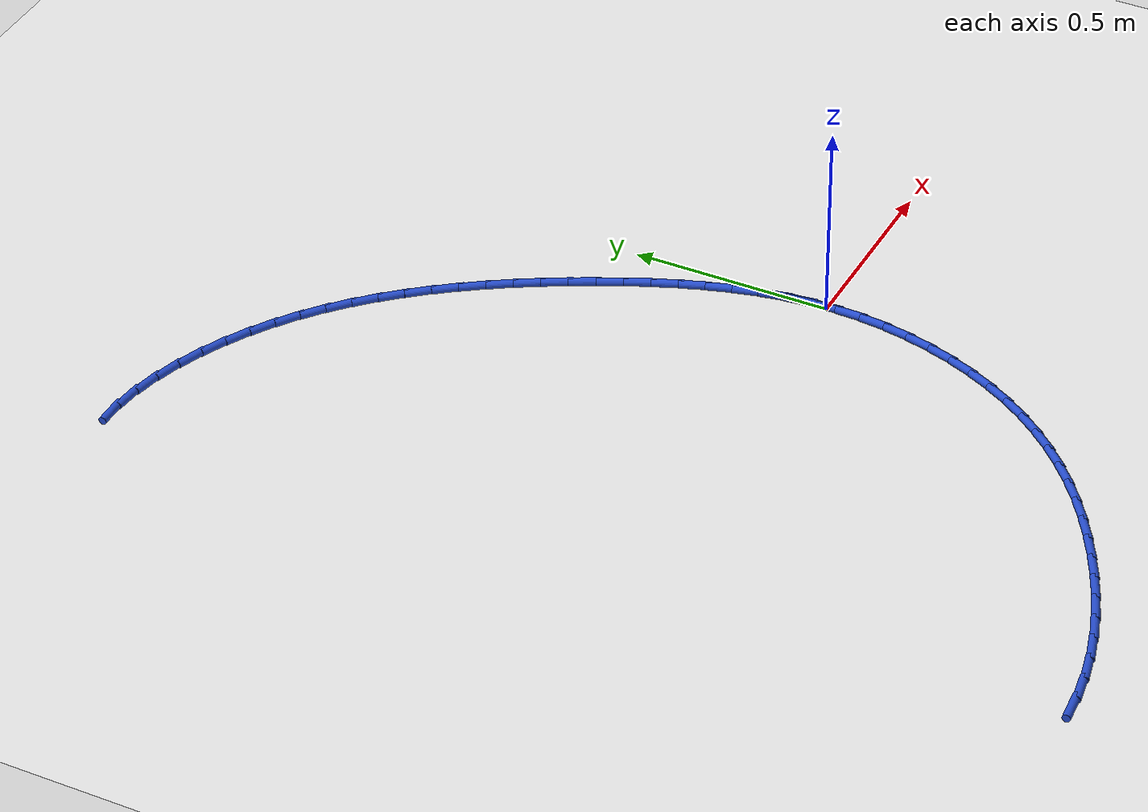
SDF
<sdf version="1.6">
 <world name="default">
  <model name="ground_plane">
   <static>1</static>
   <link name="link">
    <collision name="collision">
     <geometry><plane><normal>0 0 1</normal><size>100 100</size></plane></geometry>
     <surface><friction><ode><mu>100</mu><mu2>50</mu2></ode></friction></surface>
    </collision>
    <visual name="visual">
     <cast_shadows>0</cast_shadows>
     <geometry><plane><normal>0 0 1</normal><size>100 100</size></plane></geometry>
     <material>
      <script><uri>file://media/materials/scripts/gazebo.material</uri><name>Gazebo/WhiteGlow</name></script>
     </material>
    </visual>
   </link>
  </model>
  <model name="line">
   <link name="link_0">
    <pose>-2.7755575615628914e-17 5.551115123125783e-17 0.01 0 1.57 -1.5090928518986337</pose>
    <collision name="collision">
     <geometry><cylinder><radius>0.01</radius><length>0.08</length></cylinder></geometry>
    </collision>
    <visual name="visual">
     <material>
      <script><name>Gazebo/Blue</name><uri>file://media/materials/scripts/gazebo.material</uri></script>
     </material>
     <geometry><cylinder><radius>0.01</radius><length>0.08</length></cylinder></geometry>
    </visual>
   </link>
   <link name="link_1">
    <pose>-0.003992126652123512 0.06461644079885683 0.01 0 1.57 -1.436697027190014</pose>
    <collision name="collision">
     <geometry><cylinder><radius>0.01</radius><length>0.08</length></cylinder></geometry>
    </collision>
    <visual name="visual">
     <material>
      <script><name>Gazebo/Blue</name><uri>file://media/materials/scripts/gazebo.material</uri></script>
     </material>
     <geometry><cylinder><radius>0.01</radius><length>0.08</length></cylinder></geometry>
    </visual>
   </link>
   <link name="link_2">
    <pose>-0.01263000940041442 0.1286439438044907 0.01 0 1.57 -1.3706697580847962</pose>
    <collision name="collision">
     <geometry><cylinder><radius>0.01</radius><length>0.08</length></cylinder></geometry>
    </collision>
    <visual name="visual">
     <material>
      <script><name>Gazebo/Blue</name><uri>file://media/materials/scripts/gazebo.material</uri></script>
     </material>
     <geometry><cylinder><radius>0.01</radius><length>0.08</length></cylinder></geometry>
    </visual>
   </link>
   <link name="link_3">
    <pose>-0.0254943844602383 0.1920646712974389 0.01 0 1.57 -1.3112948390999537</pose>
    <collision name="collision">
     <geometry><cylinder><radius>0.01</radius><length>0.08</length></cylinder></geometry>
    </collision>
    <visual name="visual">
     <material>
      <script><name>Gazebo/Blue</name><uri>file://media/materials/scripts/gazebo.material</uri></script>
     </material>
     <geometry><cylinder><radius>0.01</radius><length>0.08</length></cylinder></geometry>
    </visual>
   </link>
   <link name="link_4">
    <pose>-0.04216598804696079 0.25486078555823877 0.01 0 1.57 -1.2586084916651292</pose>
    <collision name="collision">
     <geometry><cylinder><radius>0.01</radius><length>0.08</length></cylinder></geometry>
    </collision>
    <visual name="visual">
     <material>
      <script><name>Gazebo/Blue</name><uri>file://media/materials/scripts/gazebo.material</uri></script>
     </material>
     <geometry><cylinder><radius>0.01</radius><length>0.08</length></cylinder></geometry>
    </visual>
   </link>
   <link name="link_5">
    <pose>-0.062225556375947504 0.3170144488674277 0.01 0 1.57 -1.2124783396018581</pose>
    <collision name="collision">
     <geometry><cylinder><radius>0.01</radius><length>0.08</length></cylinder></geometry>
    </collision>
    <visual name="visual">
     <material>
      <script><name>Gazebo/Blue</name><uri>file://media/materials/scripts/gazebo.material</uri></script>
     </material>
     <geometry><cylinder><radius>0.01</radius><length>0.08</length></cylinder></geometry>
    </visual>
   </link>
   <link name="link_6">
    <pose>-0.08525382566256395 0.3785078235055428 0.01 0 1.57 -1.1726749977071833</pose>
    <collision name="collision">
     <geometry><cylinder><radius>0.01</radius><length>0.08</length></cylinder></geometry>
    </collision>
    <visual name="visual">
     <material>
      <script><name>Gazebo/Blue</name><uri>file://media/materials/scripts/gazebo.material</uri></script>
     </material>
     <geometry><cylinder><radius>0.01</radius><length>0.08</length></cylinder></geometry>
    </visual>
   </link>
   <link name="link_7">
    <pose>-0.11083153212217581 0.4393230717531215 0.01 0 1.57 -1.1389300872545522</pose>
    <collision name="collision">
     <geometry><cylinder><radius>0.01</radius><length>0.08</length></cylinder></geometry>
    </collision>
    <visual name="visual">
     <material>
      <script><name>Gazebo/Blue</name><uri>file://media/materials/scripts/gazebo.material</uri></script>
     </material>
     <geometry><cylinder><radius>0.01</radius><length>0.08</length></cylinder></geometry>
    </visual>
   </link>
   <link name="link_8">
    <pose>-0.13853941197014868 0.4994423558907012 0.01 0 1.57 -1.1109390100529413</pose>
    <collision name="collision">
     <geometry><cylinder><radius>0.01</radius><length>0.08</length></cylinder></geometry>
    </collision>
    <visual name="visual">
     <material>
      <script><name>Gazebo/Blue</name><uri>file://media/materials/scripts/gazebo.material</uri></script>
     </material>
     <geometry><cylinder><radius>0.01</radius><length>0.08</length></cylinder></geometry>
    </visual>
   </link>
   <link name="link_9">
    <pose>-0.16796081504252602 0.5588470023857937 0.01 0 1.57 -1.085508347150074</pose>
    <collision name="collision">
     <geometry><cylinder><radius>0.01</radius><length>0.08</length></cylinder></geometry>
    </collision>
    <visual name="visual">
     <material>
      <script><name>Gazebo/Blue</name><uri>file://media/materials/scripts/gazebo.material</uri></script>
     </material>
     <geometry><cylinder><radius>0.01</radius><length>0.08</length></cylinder></geometry>
    </visual>
   </link>
   <link name="link_10">
    <pose>-0.19886913394846922 0.617457563689828 0.01 0 1.57 -1.057567159665386</pose>
    <collision name="collision">
     <geometry><cylinder><radius>0.01</radius><length>0.08</length></cylinder></geometry>
    </collision>
    <visual name="visual">
     <material>
      <script><name>Gazebo/Blue</name><uri>file://media/materials/scripts/gazebo.material</uri></script>
     </material>
     <geometry><cylinder><radius>0.01</radius><length>0.08</length></cylinder></geometry>
    </visual>
   </link>
   <link name="link_11">
    <pose>-0.23135320969702322 0.675093714615933 0.01 0 1.57 -1.026541238328272</pose>
    <collision name="collision">
     <geometry><cylinder><radius>0.01</radius><length>0.08</length></cylinder></geometry>
    </collision>
    <visual name="visual">
     <material>
      <script><name>Gazebo/Blue</name><uri>file://media/materials/scripts/gazebo.material</uri></script>
     </material>
     <geometry><cylinder><radius>0.01</radius><length>0.08</length></cylinder></geometry>
    </visual>
   </link>
   <link name="link_12">
    <pose>-0.26553161512846657 0.7315656219977446 0.01 0 1.57 -0.9923231161221373</pose>
    <collision name="collision">
     <geometry><cylinder><radius>0.01</radius><length>0.08</length></cylinder></geometry>
    </collision>
    <visual name="visual">
     <material>
      <script><name>Gazebo/Blue</name><uri>file://media/materials/scripts/gazebo.material</uri></script>
     </material>
     <geometry><cylinder><radius>0.01</radius><length>0.08</length></cylinder></geometry>
    </visual>
   </link>
   <link name="link_13">
    <pose>-0.30152292308307815 0.7866834526688994 0.01 0 1.57 -0.9548153003213103</pose>
    <collision name="collision">
     <geometry><cylinder><radius>0.01</radius><length>0.08</length></cylinder></geometry>
    </collision>
    <visual name="visual">
     <material>
      <script><name>Gazebo/Blue</name><uri>file://media/materials/scripts/gazebo.material</uri></script>
     </material>
     <geometry><cylinder><radius>0.01</radius><length>0.08</length></cylinder></geometry>
    </visual>
   </link>
   <link name="link_14">
    <pose>-0.33944570640113664 0.8402573734630331 0.01 0 1.57 -0.9139410759161599</pose>
    <collision name="collision">
     <geometry><cylinder><radius>0.01</radius><length>0.08</length></cylinder></geometry>
    </collision>
    <visual name="visual">
     <material>
      <script><name>Gazebo/Blue</name><uri>file://media/materials/scripts/gazebo.material</uri></script>
     </material>
     <geometry><cylinder><radius>0.01</radius><length>0.08</length></cylinder></geometry>
    </visual>
   </link>
   <link name="link_15">
    <pose>-0.37941853792292074 0.8920975512137818 0.01 0 1.57 -0.8696573859437357</pose>
    <collision name="collision">
     <geometry><cylinder><radius>0.01</radius><length>0.08</length></cylinder></geometry>
    </collision>
    <visual name="visual">
     <material>
      <script><name>Gazebo/Blue</name><uri>file://media/materials/scripts/gazebo.material</uri></script>
     </material>
     <geometry><cylinder><radius>0.01</radius><length>0.08</length></cylinder></geometry>
    </visual>
   </link>
   <link name="link_16">
    <pose>-0.42155999048870924 0.9420141527547818 0.01 0 1.57 -0.8219694948245482</pose>
    <collision name="collision">
     <geometry><cylinder><radius>0.01</radius><length>0.08</length></cylinder></geometry>
    </collision>
    <visual name="visual">
     <material>
      <script><name>Gazebo/Blue</name><uri>file://media/materials/scripts/gazebo.material</uri></script>
     </material>
     <geometry><cylinder><radius>0.01</radius><length>0.08</length></cylinder></geometry>
    </visual>
   </link>
   <link name="link_17">
    <pose>-0.46598863693878084 0.9898173449196692 0.01 0 1.57 -0.7709466568145895</pose>
    <collision name="collision">
     <geometry><cylinder><radius>0.01</radius><length>0.08</length></cylinder></geometry>
    </collision>
    <visual name="visual">
     <material>
      <script><name>Gazebo/Blue</name><uri>file://media/materials/scripts/gazebo.material</uri></script>
     </material>
     <geometry><cylinder><radius>0.01</radius><length>0.08</length></cylinder></geometry>
    </visual>
   </link>
   <link name="link_18">
    <pose>-0.5128230501134142 1.0353172945420797 0.01 0 1.57 -0.7167374032947964</pose>
    <collision name="collision">
     <geometry><cylinder><radius>0.01</radius><length>0.08</length></cylinder></geometry>
    </collision>
    <visual name="visual">
     <material>
      <script><name>Gazebo/Blue</name><uri>file://media/materials/scripts/gazebo.material</uri></script>
     </material>
     <geometry><cylinder><radius>0.01</radius><length>0.08</length></cylinder></geometry>
    </visual>
   </link>
   <link name="link_19">
    <pose>-0.562181802852888 1.0783241684556497 0.01 0 1.57 -0.6595824263510677</pose>
    <collision name="collision">
     <geometry><cylinder><radius>0.01</radius><length>0.08</length></cylinder></geometry>
    </collision>
    <visual name="visual">
     <material>
      <script><name>Gazebo/Blue</name><uri>file://media/materials/scripts/gazebo.material</uri></script>
     </material>
     <geometry><cylinder><radius>0.01</radius><length>0.08</length></cylinder></geometry>
    </visual>
   </link>
   <link name="link_20">
    <pose>-0.6141834679974811 1.1186481334940157 0.01 0 1.57 -0.5998225546872143</pose>
    <collision name="collision">
     <geometry><cylinder><radius>0.01</radius><length>0.08</length></cylinder></geometry>
    </collision>
    <visual name="visual">
     <material>
      <script><name>Gazebo/Blue</name><uri>file://media/materials/scripts/gazebo.material</uri></script>
     </material>
     <geometry><cylinder><radius>0.01</radius><length>0.08</length></cylinder></geometry>
    </visual>
   </link>
   <link name="link_21">
    <pose>-0.6689466183874722 1.156099356490813 0.01 0 1.57 -0.5378992401917112</pose>
    <collision name="collision">
     <geometry><cylinder><radius>0.01</radius><length>0.08</length></cylinder></geometry>
    </collision>
    <visual name="visual">
     <material>
      <script><name>Gazebo/Blue</name><uri>file://media/materials/scripts/gazebo.material</uri></script>
     </material>
     <geometry><cylinder><radius>0.01</radius><length>0.08</length></cylinder></geometry>
    </visual>
   </link>
   <link name="link_22">
    <pose>-0.7265898268631399 1.1904880042796782 0.01 0 1.57 -0.47435684648488236</pose>
    <collision name="collision">
     <geometry><cylinder><radius>0.01</radius><length>0.08</length></cylinder></geometry>
    </collision>
    <visual name="visual">
     <material>
      <script><name>Gazebo/Blue</name><uri>file://media/materials/scripts/gazebo.material</uri></script>
     </material>
     <geometry><cylinder><radius>0.01</radius><length>0.08</length></cylinder></geometry>
    </visual>
   </link>
   <link name="link_23">
    <pose>-0.7871723914119279 1.221594675160056 0.01 0 1.57 -0.4091437895063111</pose>
    <collision name="collision">
     <geometry><cylinder><radius>0.01</radius><length>0.08</length></cylinder></geometry>
    </collision>
    <visual name="visual">
     <material>
      <script><name>Gazebo/Blue</name><uri>file://media/materials/scripts/gazebo.material</uri></script>
     </material>
     <geometry><cylinder><radius>0.01</radius><length>0.08</length></cylinder></geometry>
    </visual>
   </link>
   <link name="link_24">
    <pose>-0.8502076582129383 1.2489276260599707 0.01 0 1.57 -0.3404313974996765</pose>
    <collision name="collision">
     <geometry><cylinder><radius>0.01</radius><length>0.08</length></cylinder></geometry>
    </collision>
    <visual name="visual">
     <material>
      <script><name>Gazebo/Blue</name><uri>file://media/materials/scripts/gazebo.material</uri></script>
     </material>
     <geometry><cylinder><radius>0.01</radius><length>0.08</length></cylinder></geometry>
    </visual>
   </link>
   <link name="link_25">
    <pose>-0.9149146030936225 1.2718482708637056 0.01 0 1.57 -0.26595194389185917</pose>
    <collision name="collision">
     <geometry><cylinder><radius>0.01</radius><length>0.08</length></cylinder></geometry>
    </collision>
    <visual name="visual">
     <material>
      <script><name>Gazebo/Blue</name><uri>file://media/materials/scripts/gazebo.material</uri></script>
     </material>
     <geometry><cylinder><radius>0.01</radius><length>0.08</length></cylinder></geometry>
    </visual>
   </link>
   <link name="link_26">
    <pose>-0.9805093441132013 1.289716597892869 0.01 0 1.57 -0.18325179524771865</pose>
    <collision name="collision">
     <geometry><cylinder><radius>0.01</radius><length>0.08</length></cylinder></geometry>
    </collision>
    <visual name="visual">
     <material>
      <script><name>Gazebo/Blue</name><uri>file://media/materials/scripts/gazebo.material</uri></script>
     </material>
     <geometry><cylinder><radius>0.01</radius><length>0.08</length></cylinder></geometry>
    </visual>
   </link>
   <link name="link_27">
    <pose>-1.046207999330896 1.3018925954690705 0.01 0 1.57 -0.08963573197752554</pose>
    <collision name="collision">
     <geometry><cylinder><radius>0.01</radius><length>0.08</length></cylinder></geometry>
    </collision>
    <visual name="visual">
     <material>
      <script><name>Gazebo/Blue</name><uri>file://media/materials/scripts/gazebo.material</uri></script>
     </material>
     <geometry><cylinder><radius>0.01</radius><length>0.08</length></cylinder></geometry>
    </visual>
   </link>
   <link name="link_28">
    <pose>-1.1112266868059275 1.3077362519139197 0.01 0 1.57 0.017757542371653886</pose>
    <collision name="collision">
     <geometry><cylinder><radius>0.01</radius><length>0.08</length></cylinder></geometry>
    </collision>
    <visual name="visual">
     <material>
      <script><name>Gazebo/Blue</name><uri>file://media/materials/scripts/gazebo.material</uri></script>
     </material>
     <geometry><cylinder><radius>0.01</radius><length>0.08</length></cylinder></geometry>
    </visual>
   </link>
   <link name="link_85">
    <pose>-1.0733375020241769 -1.0588374109826908 0.01 0 1.57 0.09066737111226157</pose>
    <collision name="collision">
     <geometry><cylinder><radius>0.01</radius><length>0.08</length></cylinder></geometry>
    </collision>
    <visual name="visual">
     <material>
      <script><name>Gazebo/Blue</name><uri>file://media/materials/scripts/gazebo.material</uri></script>
     </material>
     <geometry><cylinder><radius>0.01</radius><length>0.08</length></cylinder></geometry>
    </visual>
   </link>
   <link name="link_86">
    <pose>-1.0080919311080443 -1.0529055031169743 0.01 0 1.57 0.16376848997862287</pose>
    <collision name="collision">
     <geometry><cylinder><radius>0.01</radius><length>0.08</length></cylinder></geometry>
    </collision>
    <visual name="visual">
     <material>
      <script><name>Gazebo/Blue</name><uri>file://media/materials/scripts/gazebo.material</uri></script>
     </material>
     <geometry><cylinder><radius>0.01</radius><length>0.08</length></cylinder></geometry>
    </visual>
   </link>
   <link name="link_87">
    <pose>-0.9425006911246352 -1.0420666513253198 0.01 0 1.57 0.22964580632189827</pose>
    <collision name="collision">
     <geometry><cylinder><radius>0.01</radius><length>0.08</length></cylinder></geometry>
    </collision>
    <visual name="visual">
     <material>
      <script><name>Gazebo/Blue</name><uri>file://media/materials/scripts/gazebo.material</uri></script>
     </material>
     <geometry><cylinder><radius>0.01</radius><length>0.08</length></cylinder></geometry>
    </visual>
   </link>
   <link name="link_88">
    <pose>-0.8769208590064548 -1.0267360682911217 0.01 0 1.57 0.2892563904519216</pose>
    <collision name="collision">
     <geometry><cylinder><radius>0.01</radius><length>0.08</length></cylinder></geometry>
    </collision>
    <visual name="visual">
     <material>
      <script><name>Gazebo/Blue</name><uri>file://media/materials/scripts/gazebo.material</uri></script>
     </material>
     <geometry><cylinder><radius>0.01</radius><length>0.08</length></cylinder></geometry>
    </visual>
   </link>
   <link name="link_89">
    <pose>-0.811709511686004 -1.007328966697772 0.01 0 1.57 0.34354329433304237</pose>
    <collision name="collision">
     <geometry><cylinder><radius>0.01</radius><length>0.08</length></cylinder></geometry>
    </collision>
    <visual name="visual">
     <material>
      <script><name>Gazebo/Blue</name><uri>file://media/materials/scripts/gazebo.material</uri></script>
     </material>
     <geometry><cylinder><radius>0.01</radius><length>0.08</length></cylinder></geometry>
    </visual>
   </link>
   <link name="link_90">
    <pose>-0.7472237260957869 -0.9842605592286655 0.01 0 1.57 0.3933996902809109</pose>
    <collision name="collision">
     <geometry><cylinder><radius>0.01</radius><length>0.08</length></cylinder></geometry>
    </collision>
    <visual name="visual">
     <material>
      <script><name>Gazebo/Blue</name><uri>file://media/materials/scripts/gazebo.material</uri></script>
     </material>
     <geometry><cylinder><radius>0.01</radius><length>0.08</length></cylinder></geometry>
    </visual>
   </link>
   <link name="link_91">
    <pose>-0.6838205791683047 -0.957946058567195 0.01 0 1.57 0.4396591679943344</pose>
    <collision name="collision">
     <geometry><cylinder><radius>0.01</radius><length>0.08</length></cylinder></geometry>
    </collision>
    <visual name="visual">
     <material>
      <script><name>Gazebo/Blue</name><uri>file://media/materials/scripts/gazebo.material</uri></script>
     </material>
     <geometry><cylinder><radius>0.01</radius><length>0.08</length></cylinder></geometry>
    </visual>
   </link>
   <link name="link_92">
    <pose>-0.6218571478360624 -0.9288006773967546 0.01 0 1.57 0.4831539802421876</pose>
    <collision name="collision">
     <geometry><cylinder><radius>0.01</radius><length>0.08</length></cylinder></geometry>
    </collision>
    <visual name="visual">
     <material>
      <script><name>Gazebo/Blue</name><uri>file://media/materials/scripts/gazebo.material</uri></script>
     </material>
     <geometry><cylinder><radius>0.01</radius><length>0.08</length></cylinder></geometry>
    </visual>
   </link>
   <link name="link_93">
    <pose>-0.561688778963007 -0.8972347703332694 0.01 0 1.57 0.5267458163911963</pose>
    <collision name="collision">
     <geometry><cylinder><radius>0.01</radius><length>0.08</length></cylinder></geometry>
    </collision>
    <visual name="visual">
     <material>
      <script><name>Gazebo/Blue</name><uri>file://media/materials/scripts/gazebo.material</uri></script>
     </material>
     <geometry><cylinder><radius>0.01</radius><length>0.08</length></cylinder></geometry>
    </visual>
   </link>
   <link name="link_94">
    <pose>-0.5035969370091316 -0.8634512287090034 0.01 0 1.57 0.5736896577780157</pose>
    <collision name="collision">
     <geometry><cylinder><radius>0.01</radius><length>0.08</length></cylinder></geometry>
    </collision>
    <visual name="visual">
     <material>
      <script><name>Gazebo/Blue</name><uri>file://media/materials/scripts/gazebo.material</uri></script>
     </material>
     <geometry><cylinder><radius>0.01</radius><length>0.08</length></cylinder></geometry>
    </visual>
   </link>
   <link name="link_95">
    <pose>-0.4477630910753024 -0.8273721548666414 0.01 0 1.57 0.6243113443421328</pose>
    <collision name="collision">
     <geometry><cylinder><radius>0.01</radius><length>0.08</length></cylinder></geometry>
    </collision>
    <visual name="visual">
     <material>
      <script><name>Gazebo/Blue</name><uri>file://media/materials/scripts/gazebo.material</uri></script>
     </material>
     <geometry><cylinder><radius>0.01</radius><length>0.08</length></cylinder></geometry>
    </visual>
   </link>
   <link name="link_96">
    <pose>-0.3943616071832389 -0.7888997055590466 0.01 0 1.57 0.6786643427706492</pose>
    <collision name="collision">
     <geometry><cylinder><radius>0.01</radius><length>0.08</length></cylinder></geometry>
    </collision>
    <visual name="visual">
     <material>
      <script><name>Gazebo/Blue</name><uri>file://media/materials/scripts/gazebo.material</uri></script>
     </material>
     <geometry><cylinder><radius>0.01</radius><length>0.08</length></cylinder></geometry>
    </visual>
   </link>
   <link name="link_97">
    <pose>-0.34356685135465853 -0.7479360375390819 0.01 0 1.57 0.736718648562004</pose>
    <collision name="collision">
     <geometry><cylinder><radius>0.01</radius><length>0.08</length></cylinder></geometry>
    </collision>
    <visual name="visual">
     <material>
      <script><name>Gazebo/Blue</name><uri>file://media/materials/scripts/gazebo.material</uri></script>
     </material>
     <geometry><cylinder><radius>0.01</radius><length>0.08</length></cylinder></geometry>
    </visual>
   </link>
   <link name="link_98">
    <pose>-0.295553189611279 -0.7043833075596092 0.01 0 1.57 0.7983378742583052</pose>
    <collision name="collision">
     <geometry><cylinder><radius>0.01</radius><length>0.08</length></cylinder></geometry>
    </collision>
    <visual name="visual">
     <material>
      <script><name>Gazebo/Blue</name><uri>file://media/materials/scripts/gazebo.material</uri></script>
     </material>
     <geometry><cylinder><radius>0.01</radius><length>0.08</length></cylinder></geometry>
    </visual>
   </link>
   <link name="link_99">
    <pose>-0.25049498797481967 -0.6581436723734926 0.01 0 1.57 0.8632590549136404</pose>
    <collision name="collision">
     <geometry><cylinder><radius>0.01</radius><length>0.08</length></cylinder></geometry>
    </collision>
    <visual name="visual">
     <material>
      <script><name>Gazebo/Blue</name><uri>file://media/materials/scripts/gazebo.material</uri></script>
     </material>
     <geometry><cylinder><radius>0.01</radius><length>0.08</length></cylinder></geometry>
    </visual>
   </link>
   <link name="link_100">
    <pose>-0.20856661246699748 -0.6091192887335938 0.01 0 1.57 0.9310794066901795</pose>
    <collision name="collision">
     <geometry><cylinder><radius>0.01</radius><length>0.08</length></cylinder></geometry>
    </collision>
    <visual name="visual">
     <material>
      <script><name>Gazebo/Blue</name><uri>file://media/materials/scripts/gazebo.material</uri></script>
     </material>
     <geometry><cylinder><radius>0.01</radius><length>0.08</length></cylinder></geometry>
    </visual>
   </link>
   <link name="link_101">
    <pose>-0.16994242910953183 -0.5572123133927768 0.01 0 1.57 1.0010227326476042</pose>
    <collision name="collision">
     <geometry><cylinder><radius>0.01</radius><length>0.08</length></cylinder></geometry>
    </collision>
    <visual name="visual">
     <material>
      <script><name>Gazebo/Blue</name><uri>file://media/materials/scripts/gazebo.material</uri></script>
     </material>
     <geometry><cylinder><radius>0.01</radius><length>0.08</length></cylinder></geometry>
    </visual>
   </link>
   <link name="link_102">
    <pose>-0.13479691310543218 -0.5023530903576671 0.01 0 1.57 1.0703418414185617</pose>
    <collision name="collision">
     <geometry><cylinder><radius>0.01</radius><length>0.08</length></cylinder></geometry>
    </collision>
    <visual name="visual">
     <material>
      <script><name>Gazebo/Blue</name><uri>file://media/materials/scripts/gazebo.material</uri></script>
     </material>
     <geometry><cylinder><radius>0.01</radius><length>0.08</length></cylinder></geometry>
    </visual>
   </link>
   <link name="link_103">
    <pose>-0.10330569804797811 -0.44477102439664035 0.01 0 1.57 1.1381603393345858</pose>
    <collision name="collision">
     <geometry><cylinder><radius>0.01</radius><length>0.08</length></cylinder></geometry>
    </collision>
    <visual name="visual">
     <material>
      <script><name>Gazebo/Blue</name><uri>file://media/materials/scripts/gazebo.material</uri></script>
     </material>
     <geometry><cylinder><radius>0.01</radius><length>0.08</length></cylinder></geometry>
    </visual>
   </link>
   <link name="link_104">
    <pose>-0.07564511540591301 -0.3848756902726362 0.01 0 1.57 1.2052346790114499</pose>
    <collision name="collision">
     <geometry><cylinder><radius>0.01</radius><length>0.08</length></cylinder></geometry>
    </collision>
    <visual name="visual">
     <material>
      <script><name>Gazebo/Blue</name><uri>file://media/materials/scripts/gazebo.material</uri></script>
     </material>
     <geometry><cylinder><radius>0.01</radius><length>0.08</length></cylinder></geometry>
    </visual>
   </link>
   <link name="link_105">
    <pose>-0.05199150624572513 -0.32307914059090426 0.01 0 1.57 1.2723296189817412</pose>
    <collision name="collision">
     <geometry><cylinder><radius>0.01</radius><length>0.08</length></cylinder></geometry>
    </collision>
    <visual name="visual">
     <material>
      <script><name>Gazebo/Blue</name><uri>file://media/materials/scripts/gazebo.material</uri></script>
     </material>
     <geometry><cylinder><radius>0.01</radius><length>0.08</length></cylinder></geometry>
    </visual>
   </link>
   <link name="link_106">
    <pose>-0.032521211633901315 -0.2597934279566914 0.01 0 1.57 1.3401997040475733</pose>
    <collision name="collision">
     <geometry><cylinder><radius>0.01</radius><length>0.08</length></cylinder></geometry>
    </collision>
    <visual name="visual">
     <material>
      <script><name>Gazebo/Blue</name><uri>file://media/materials/scripts/gazebo.material</uri></script>
     </material>
     <geometry><cylinder><radius>0.01</radius><length>0.08</length></cylinder></geometry>
    </visual>
   </link>
   <link name="link_107">
    <pose>-0.017410572636929564 -0.19543060497524692 0.01 0 1.57 1.4095903829383951</pose>
    <collision name="collision">
     <geometry><cylinder><radius>0.01</radius><length>0.08</length></cylinder></geometry>
    </collision>
    <visual name="visual">
     <material>
      <script><name>Gazebo/Blue</name><uri>file://media/materials/scripts/gazebo.material</uri></script>
     </material>
     <geometry><cylinder><radius>0.01</radius><length>0.08</length></cylinder></geometry>
    </visual>
   </link>
   <link name="link_108">
    <pose>-0.006835930321297012 -0.13040272425181762 0.01 0 1.57 1.4812353180283746</pose>
    <collision name="collision">
     <geometry><cylinder><radius>0.01</radius><length>0.08</length></cylinder></geometry>
    </collision>
    <visual name="visual">
     <material>
      <script><name>Gazebo/Blue</name><uri>file://media/materials/scripts/gazebo.material</uri></script>
     </material>
     <geometry><cylinder><radius>0.01</radius><length>0.08</length></cylinder></geometry>
    </visual>
   </link>
   <link name="link_109">
    <pose>-0.0009736257534913653 -0.0651218383916531 0.01 0 1.57 1.5558466072653725</pose>
    <collision name="collision">
     <geometry><cylinder><radius>0.01</radius><length>0.08</length></cylinder></geometry>
    </collision>
    <visual name="visual">
     <material>
      <script><name>Gazebo/Blue</name><uri>file://media/materials/scripts/gazebo.material</uri></script>
     </material>
     <geometry><cylinder><radius>0.01</radius><length>0.08</length></cylinder></geometry>
    </visual>
   </link>
   <link name="link_110">
    <pose>-2.7755575615628914e-17 1.1102230246251565e-16 0.01 0 1.57 -1.507498391845043</pose>
    <collision name="collision">
     <geometry><cylinder><radius>0.01</radius><length>0.08</length></cylinder></geometry>
    </collision>
    <visual name="visual">
     <material>
      <script><name>Gazebo/Blue</name><uri>file://media/materials/scripts/gazebo.material</uri></script>
     </material>
     <geometry><cylinder><radius>0.01</radius><length>0.08</length></cylinder></geometry>
    </visual>
   </link>
   <link name="link_111">
    <pose>-0.004091394127310459 0.06455073831789229 0.01 0 1.57 -1.507498391845043</pose>
    <collision name="collision">
     <geometry><cylinder><radius>0.01</radius><length>0.08</length></cylinder></geometry>
    </collision>
    <visual name="visual">
     <material>
      <script><name>Gazebo/Blue</name><uri>file://media/materials/scripts/gazebo.material</uri></script>
     </material>
     <geometry><cylinder><radius>0.01</radius><length>0.08</length></cylinder></geometry>
    </visual>
   </link>
  </model>
 </world>
</sdf>
